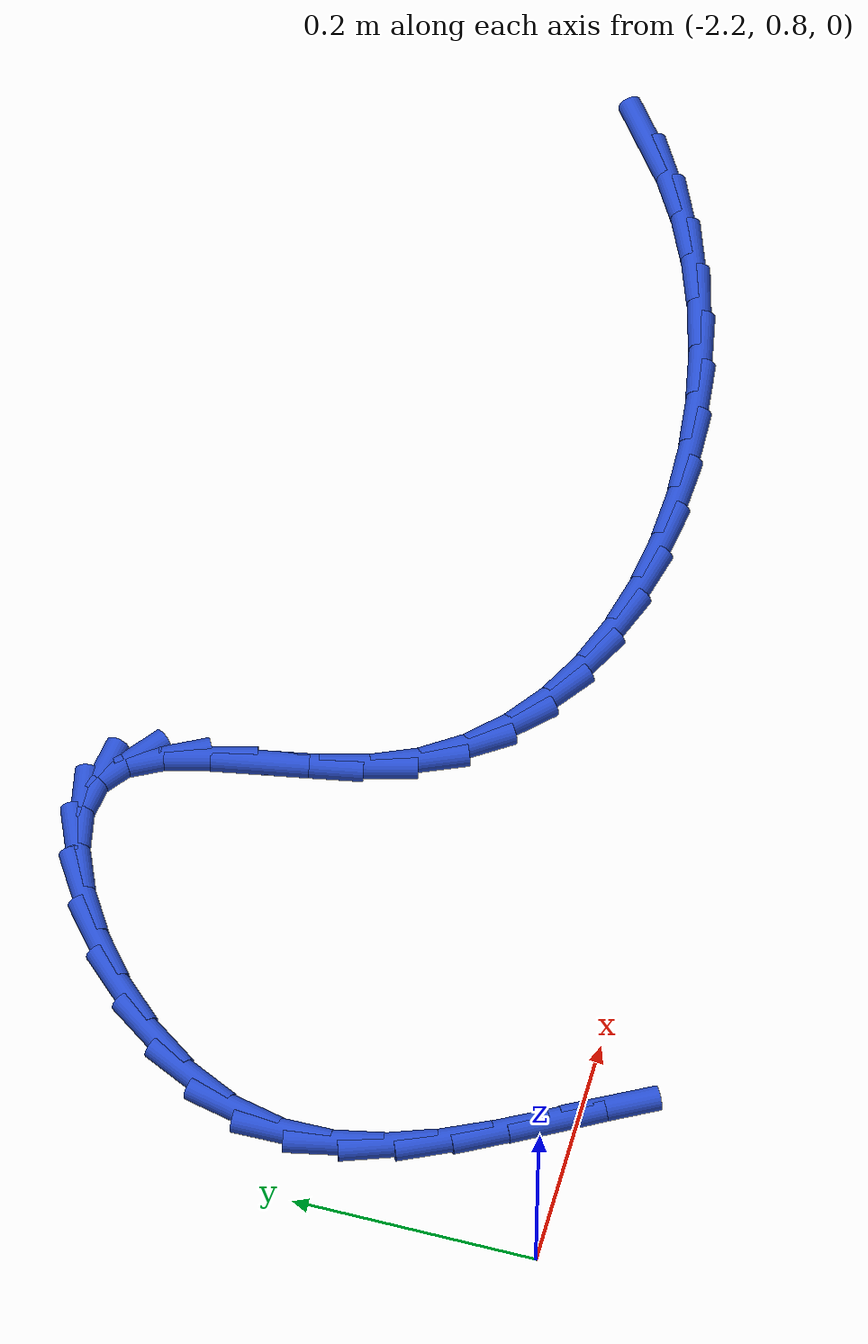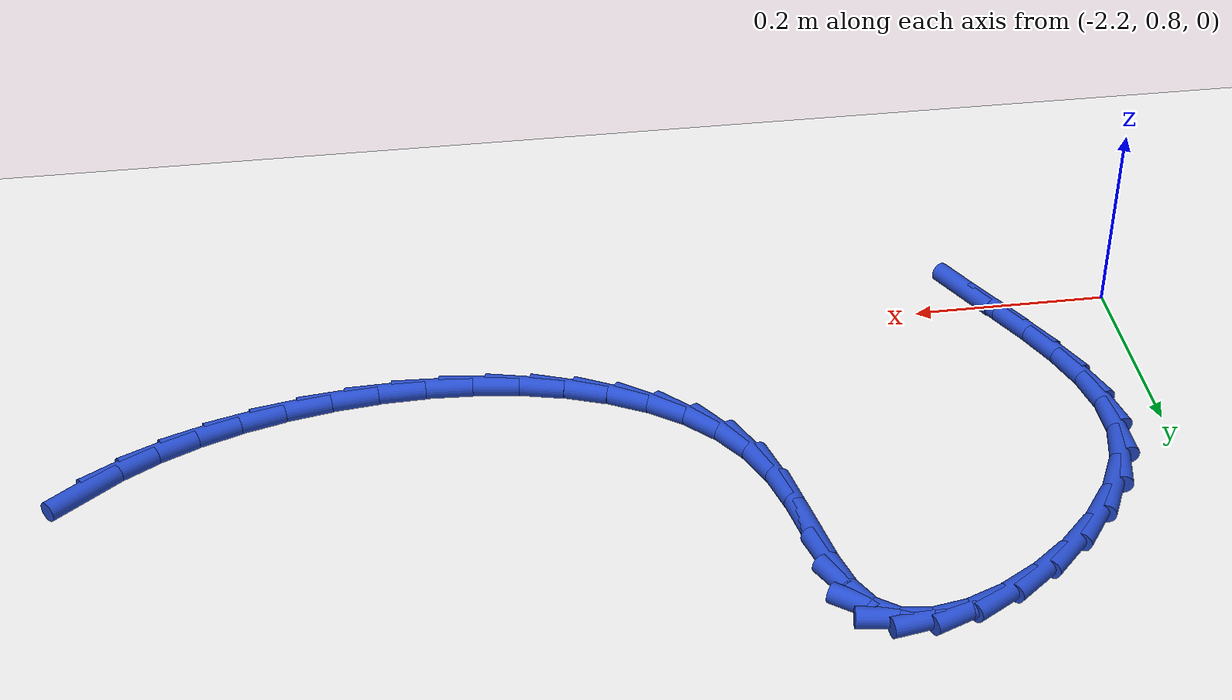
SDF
<sdf version="1.6">
 <world name="default">
  <model name="ground_plane">
   <static>1</static>
   <link name="link">
    <collision name="collision">
     <geometry><plane><normal>0 0 1</normal><size>100 100</size></plane></geometry>
     <surface><friction><ode><mu>100</mu><mu2>50</mu2></ode></friction></surface>
    </collision>
    <visual name="visual">
     <cast_shadows>0</cast_shadows>
     <geometry><plane><normal>0 0 1</normal><size>100 100</size></plane></geometry>
     <material>
      <script><uri>file://media/materials/scripts/gazebo.material</uri><name>Gazebo/WhiteGlow</name></script>
     </material>
    </visual>
   </link>
  </model>
  <model name="line">
   <link name="link_56">
    <pose>-1.1499961409888821 0.9808490637545612 0.01 0 1.57 0.6586563215360689</pose>
    <collision name="collision">
     <geometry><cylinder><radius>0.01</radius><length>0.08</length></cylinder></geometry>
    </collision>
    <visual name="visual">
     <material>
      <script><name>Gazebo/Blue</name><uri>file://media/materials/scripts/gazebo.material</uri></script>
     </material>
     <geometry><cylinder><radius>0.01</radius><length>0.08</length></cylinder></geometry>
    </visual>
   </link>
   <link name="link_57">
    <pose>-1.1829011087535364 0.9553821281779883 0.01 0 1.57 0.5456979792749265</pose>
    <collision name="collision">
     <geometry><cylinder><radius>0.01</radius><length>0.08</length></cylinder></geometry>
    </collision>
    <visual name="visual">
     <material>
      <script><name>Gazebo/Blue</name><uri>file://media/materials/scripts/gazebo.material</uri></script>
     </material>
     <geometry><cylinder><radius>0.01</radius><length>0.08</length></cylinder></geometry>
    </visual>
   </link>
   <link name="link_58">
    <pose>-1.2198823777023107 0.9329270422638208 0.01 0 1.57 0.44613907043595596</pose>
    <collision name="collision">
     <geometry><cylinder><radius>0.01</radius><length>0.08</length></cylinder></geometry>
    </collision>
    <visual name="visual">
     <material>
      <script><name>Gazebo/Blue</name><uri>file://media/materials/scripts/gazebo.material</uri></script>
     </material>
     <geometry><cylinder><radius>0.01</radius><length>0.08</length></cylinder></geometry>
    </visual>
   </link>
   <link name="link_59">
    <pose>-1.2602610481628223 0.9136138410345943 0.01 0 1.57 0.35632409400290016</pose>
    <collision name="collision">
     <geometry><cylinder><radius>0.01</radius><length>0.08</length></cylinder></geometry>
    </collision>
    <visual name="visual">
     <material>
      <script><name>Gazebo/Blue</name><uri>file://media/materials/scripts/gazebo.material</uri></script>
     </material>
     <geometry><cylinder><radius>0.01</radius><length>0.08</length></cylinder></geometry>
    </visual>
   </link>
   <link name="link_60">
    <pose>-1.3033582204626872 0.8975725595128453 0.01 0 1.57 0.27302986229351545</pose>
    <collision name="collision">
     <geometry><cylinder><radius>0.01</radius><length>0.08</length></cylinder></geometry>
    </collision>
    <visual name="visual">
     <material>
      <script><name>Gazebo/Blue</name><uri>file://media/materials/scripts/gazebo.material</uri></script>
     </material>
     <geometry><cylinder><radius>0.01</radius><length>0.08</length></cylinder></geometry>
    </visual>
   </link>
   <link name="link_61">
    <pose>-1.3484949949295237 0.8849332327211092 0.01 0 1.57 0.19341870682490253</pose>
    <collision name="collision">
     <geometry><cylinder><radius>0.01</radius><length>0.08</length></cylinder></geometry>
    </collision>
    <visual name="visual">
     <material>
      <script><name>Gazebo/Blue</name><uri>file://media/materials/scripts/gazebo.material</uri></script>
     </material>
     <geometry><cylinder><radius>0.01</radius><length>0.08</length></cylinder></geometry>
    </visual>
   </link>
   <link name="link_62">
    <pose>-1.394992471890947 0.8758258956819222 0.01 0 1.57 0.11490901057066237</pose>
    <collision name="collision">
     <geometry><cylinder><radius>0.01</radius><length>0.08</length></cylinder></geometry>
    </collision>
    <visual name="visual">
     <material>
      <script><name>Gazebo/Blue</name><uri>file://media/materials/scripts/gazebo.material</uri></script>
     </material>
     <geometry><cylinder><radius>0.01</radius><length>0.08</length></cylinder></geometry>
    </visual>
   </link>
   <link name="link_63">
    <pose>-1.442171751674576 0.87038058341782 0.01 0 1.57 0.03502543224834319</pose>
    <collision name="collision">
     <geometry><cylinder><radius>0.01</radius><length>0.08</length></cylinder></geometry>
    </collision>
    <visual name="visual">
     <material>
      <script><name>Gazebo/Blue</name><uri>file://media/materials/scripts/gazebo.material</uri></script>
     </material>
     <geometry><cylinder><radius>0.01</radius><length>0.08</length></cylinder></geometry>
    </visual>
   </link>
   <link name="link_64">
    <pose>-1.4893539346080258 0.8687273309513387 0.01 0 1.57 -0.04874716901255581</pose>
    <collision name="collision">
     <geometry><cylinder><radius>0.01</radius><length>0.08</length></cylinder></geometry>
    </collision>
    <visual name="visual">
     <material>
      <script><name>Gazebo/Blue</name><uri>file://media/materials/scripts/gazebo.material</uri></script>
     </material>
     <geometry><cylinder><radius>0.01</radius><length>0.08</length></cylinder></geometry>
    </visual>
   </link>
   <link name="link_65">
    <pose>-1.5358601210189131 0.8709961733050139 0.01 0 1.57 -0.13909141387673266</pose>
    <collision name="collision">
     <geometry><cylinder><radius>0.01</radius><length>0.08</length></cylinder></geometry>
    </collision>
    <visual name="visual">
     <material>
      <script><name>Gazebo/Blue</name><uri>file://media/materials/scripts/gazebo.material</uri></script>
     </material>
     <geometry><cylinder><radius>0.01</radius><length>0.08</length></cylinder></geometry>
    </visual>
   </link>
   <link name="link_66">
    <pose>-1.581011411234857 0.877317145501382 0.01 0 1.57 -0.23893989248989606</pose>
    <collision name="collision">
     <geometry><cylinder><radius>0.01</radius><length>0.08</length></cylinder></geometry>
    </collision>
    <visual name="visual">
     <material>
      <script><name>Gazebo/Blue</name><uri>file://media/materials/scripts/gazebo.material</uri></script>
     </material>
     <geometry><cylinder><radius>0.01</radius><length>0.08</length></cylinder></geometry>
    </visual>
   </link>
   <link name="link_67">
    <pose>-1.6241289055834724 0.8878202825629785 0.01 0 1.57 -0.3514501183548127</pose>
    <collision name="collision">
     <geometry><cylinder><radius>0.01</radius><length>0.08</length></cylinder></geometry>
    </collision>
    <visual name="visual">
     <material>
      <script><name>Gazebo/Blue</name><uri>file://media/materials/scripts/gazebo.material</uri></script>
     </material>
     <geometry><cylinder><radius>0.01</radius><length>0.08</length></cylinder></geometry>
    </visual>
   </link>
   <link name="link_68">
    <pose>-1.6645337043923774 0.9026356195123397 0.01 0 1.57 -0.47974694753183705</pose>
    <collision name="collision">
     <geometry><cylinder><radius>0.01</radius><length>0.08</length></cylinder></geometry>
    </collision>
    <visual name="visual">
     <material>
      <script><name>Gazebo/Blue</name><uri>file://media/materials/scripts/gazebo.material</uri></script>
     </material>
     <geometry><cylinder><radius>0.01</radius><length>0.08</length></cylinder></geometry>
    </visual>
   </link>
   <link name="link_69">
    <pose>-1.7015469079891876 0.9218931913720011 0.01 0 1.57 -0.6262404363219375</pose>
    <collision name="collision">
     <geometry><cylinder><radius>0.01</radius><length>0.08</length></cylinder></geometry>
    </collision>
    <visual name="visual">
     <material>
      <script><name>Gazebo/Blue</name><uri>file://media/materials/scripts/gazebo.material</uri></script>
     </material>
     <geometry><cylinder><radius>0.01</radius><length>0.08</length></cylinder></geometry>
    </visual>
   </link>
   <link name="link_70">
    <pose>-1.7344896167015211 0.9457230331644988 0.01 0 1.57 -0.7913712935816095</pose>
    <collision name="collision">
     <geometry><cylinder><radius>0.01</radius><length>0.08</length></cylinder></geometry>
    </collision>
    <visual name="visual">
     <material>
      <script><name>Gazebo/Blue</name><uri>file://media/materials/scripts/gazebo.material</uri></script>
     </material>
     <geometry><cylinder><radius>0.01</radius><length>0.08</length></cylinder></geometry>
    </visual>
   </link>
   <link name="link_71">
    <pose>-1.762682930856994 0.9742551799123687 0.01 0 1.57 -0.9720397861753626</pose>
    <collision name="collision">
     <geometry><cylinder><radius>0.01</radius><length>0.08</length></cylinder></geometry>
    </collision>
    <visual name="visual">
     <material>
      <script><name>Gazebo/Blue</name><uri>file://media/materials/scripts/gazebo.material</uri></script>
     </material>
     <geometry><cylinder><radius>0.01</radius><length>0.08</length></cylinder></geometry>
    </visual>
   </link>
   <link name="link_72">
    <pose>-1.7854479507832237 1.0076196666381472 0.01 0 1.57 -1.160239931327634</pose>
    <collision name="collision">
     <geometry><cylinder><radius>0.01</radius><length>0.08</length></cylinder></geometry>
    </collision>
    <visual name="visual">
     <material>
      <script><name>Gazebo/Blue</name><uri>file://media/materials/scripts/gazebo.material</uri></script>
     </material>
     <geometry><cylinder><radius>0.01</radius><length>0.08</length></cylinder></geometry>
    </visual>
   </link>
   <link name="link_73">
    <pose>-1.8021237760128328 1.0459291050560426 0.01 0 1.57 -1.313152241642247</pose>
    <collision name="collision">
     <geometry><cylinder><radius>0.01</radius><length>0.08</length></cylinder></geometry>
    </collision>
    <visual name="visual">
     <material>
      <script><name>Gazebo/Blue</name><uri>file://media/materials/scripts/gazebo.material</uri></script>
     </material>
     <geometry><cylinder><radius>0.01</radius><length>0.08</length></cylinder></geometry>
    </visual>
   </link>
   <link name="link_74">
    <pose>-1.8132458506718558 1.0881380401374294 0.01 0 1.57 -1.3870518415586446</pose>
    <collision name="collision">
     <geometry><cylinder><radius>0.01</radius><length>0.08</length></cylinder></geometry>
    </collision>
    <visual name="visual">
     <material>
      <script><name>Gazebo/Blue</name><uri>file://media/materials/scripts/gazebo.material</uri></script>
     </material>
     <geometry><cylinder><radius>0.01</radius><length>0.08</length></cylinder></geometry>
    </visual>
   </link>
   <link name="link_75">
    <pose>-1.82127416810431 1.1313380448834156 0.01 0 1.57 -1.388747293466564</pose>
    <collision name="collision">
     <geometry><cylinder><radius>0.01</radius><length>0.08</length></cylinder></geometry>
    </collision>
    <visual name="visual">
     <material>
      <script><name>Gazebo/Blue</name><uri>file://media/materials/scripts/gazebo.material</uri></script>
     </material>
     <geometry><cylinder><radius>0.01</radius><length>0.08</length></cylinder></geometry>
    </visual>
   </link>
   <link name="link_76">
    <pose>-1.8288427617894452 1.1724522206911596 0.01 0 1.57 -1.306151094775137</pose>
    <collision name="collision">
     <geometry><cylinder><radius>0.01</radius><length>0.08</length></cylinder></geometry>
    </collision>
    <visual name="visual">
     <material>
      <script><name>Gazebo/Blue</name><uri>file://media/materials/scripts/gazebo.material</uri></script>
     </material>
     <geometry><cylinder><radius>0.01</radius><length>0.08</length></cylinder></geometry>
    </visual>
   </link>
   <link name="link_77">
    <pose>-1.8385856652065102 1.2084036689578193 0.01 0 1.57 -1.0872774744307023</pose>
    <collision name="collision">
     <geometry><cylinder><radius>0.01</radius><length>0.08</length></cylinder></geometry>
    </collision>
    <visual name="visual">
     <material>
      <script><name>Gazebo/Blue</name><uri>file://media/materials/scripts/gazebo.material</uri></script>
     </material>
     <geometry><cylinder><radius>0.01</radius><length>0.08</length></cylinder></geometry>
    </visual>
   </link>
   <link name="link_78">
    <pose>-1.8531369118347554 1.2361154910805519 0.01 0 1.57 -0.6454386616561509</pose>
    <collision name="collision">
     <geometry><cylinder><radius>0.01</radius><length>0.08</length></cylinder></geometry>
    </collision>
    <visual name="visual">
     <material>
      <script><name>Gazebo/Blue</name><uri>file://media/materials/scripts/gazebo.material</uri></script>
     </material>
     <geometry><cylinder><radius>0.01</radius><length>0.08</length></cylinder></geometry>
    </visual>
   </link>
   <link name="link_79">
    <pose>-1.8750308689683424 1.2526023378159492 0.01 0 1.57 -0.1489024832219367</pose>
    <collision name="collision">
     <geometry><cylinder><radius>0.01</radius><length>0.08</length></cylinder></geometry>
    </collision>
    <visual name="visual">
     <material>
      <script><name>Gazebo/Blue</name><uri>file://media/materials/scripts/gazebo.material</uri></script>
     </material>
     <geometry><cylinder><radius>0.01</radius><length>0.08</length></cylinder></geometry>
    </visual>
   </link>
   <link name="link_80">
    <pose>-1.9044721229121937 1.257018903276329 0.01 0 1.57 0.17998443423507343</pose>
    <collision name="collision">
     <geometry><cylinder><radius>0.01</radius><length>0.08</length></cylinder></geometry>
    </collision>
    <visual name="visual">
     <material>
      <script><name>Gazebo/Blue</name><uri>file://media/materials/scripts/gazebo.material</uri></script>
     </material>
     <geometry><cylinder><radius>0.01</radius><length>0.08</length></cylinder></geometry>
    </visual>
   </link>
   <link name="link_81">
    <pose>-1.9393144765798844 1.2506792168937835 0.01 0 1.57 0.3915555624367051</pose>
    <collision name="collision">
     <geometry><cylinder><radius>0.01</radius><length>0.08</length></cylinder></geometry>
    </collision>
    <visual name="visual">
     <material>
      <script><name>Gazebo/Blue</name><uri>file://media/materials/scripts/gazebo.material</uri></script>
     </material>
     <geometry><cylinder><radius>0.01</radius><length>0.08</length></cylinder></geometry>
    </visual>
   </link>
   <link name="link_82">
    <pose>-1.977307866113426 1.2349927159500629 0.01 0 1.57 0.5458324565909884</pose>
    <collision name="collision">
     <geometry><cylinder><radius>0.01</radius><length>0.08</length></cylinder></geometry>
    </collision>
    <visual name="visual">
     <material>
      <script><name>Gazebo/Blue</name><uri>file://media/materials/scripts/gazebo.material</uri></script>
     </material>
     <geometry><cylinder><radius>0.01</radius><length>0.08</length></cylinder></geometry>
    </visual>
   </link>
   <link name="link_83">
    <pose>-2.0162022276548353 1.2113688377269194 0.01 0 1.57 0.6766155728892855</pose>
    <collision name="collision">
     <geometry><cylinder><radius>0.01</radius><length>0.08</length></cylinder></geometry>
    </collision>
    <visual name="visual">
     <material>
      <script><name>Gazebo/Blue</name><uri>file://media/materials/scripts/gazebo.material</uri></script>
     </material>
     <geometry><cylinder><radius>0.01</radius><length>0.08</length></cylinder></geometry>
    </visual>
   </link>
   <link name="link_84">
    <pose>-2.0537474973461216 1.181217019506104 0.01 0 1.57 0.804527224765265</pose>
    <collision name="collision">
     <geometry><cylinder><radius>0.01</radius><length>0.08</length></cylinder></geometry>
    </collision>
    <visual name="visual">
     <material>
      <script><name>Gazebo/Blue</name><uri>file://media/materials/scripts/gazebo.material</uri></script>
     </material>
     <geometry><cylinder><radius>0.01</radius><length>0.08</length></cylinder></geometry>
    </visual>
   </link>
   <link name="link_85">
    <pose>-2.0876936113293008 1.1459466985693674 0.01 0 1.57 0.9462372717508026</pose>
    <collision name="collision">
     <geometry><cylinder><radius>0.01</radius><length>0.08</length></cylinder></geometry>
    </collision>
    <visual name="visual">
     <material>
      <script><name>Gazebo/Blue</name><uri>file://media/materials/scripts/gazebo.material</uri></script>
     </material>
     <geometry><cylinder><radius>0.01</radius><length>0.08</length></cylinder></geometry>
    </visual>
   </link>
   <link name="link_86">
    <pose>-2.1157905057463857 1.1069673121984616 0.01 0 1.57 1.119666074090778</pose>
    <collision name="collision">
     <geometry><cylinder><radius>0.01</radius><length>0.08</length></cylinder></geometry>
    </collision>
    <visual name="visual">
     <material>
      <script><name>Gazebo/Blue</name><uri>file://media/materials/scripts/gazebo.material</uri></script>
     </material>
     <geometry><cylinder><radius>0.01</radius><length>0.08</length></cylinder></geometry>
    </visual>
   </link>
   <link name="link_87">
    <pose>-2.135788116739389 1.0656882976751374 0.01 0 1.57 1.3438183965602193</pose>
    <collision name="collision">
     <geometry><cylinder><radius>0.01</radius><length>0.08</length></cylinder></geometry>
    </collision>
    <visual name="visual">
     <material>
      <script><name>Gazebo/Blue</name><uri>file://media/materials/scripts/gazebo.material</uri></script>
     </material>
     <geometry><cylinder><radius>0.01</radius><length>0.08</length></cylinder></geometry>
    </visual>
   </link>
   <link name="link_88">
    <pose>-2.1455334714453587 1.0234929170790426 0.01 0 1.57 -1.5573171466898221</pose>
    <collision name="collision">
     <geometry><cylinder><radius>0.01</radius><length>0.08</length></cylinder></geometry>
    </collision>
    <visual name="visual">
     <material>
      <script><name>Gazebo/Blue</name><uri>file://media/materials/scripts/gazebo.material</uri></script>
     </material>
     <geometry><cylinder><radius>0.01</radius><length>0.08</length></cylinder></geometry>
    </visual>
   </link>
   <link name="link_89">
    <pose>-2.144963377079426 0.9812010391918702 0.01 0 1.57 -1.361707097125111</pose>
    <collision name="collision">
     <geometry><cylinder><radius>0.01</radius><length>0.08</length></cylinder></geometry>
    </collision>
    <visual name="visual">
     <material>
      <script><name>Gazebo/Blue</name><uri>file://media/materials/scripts/gazebo.material</uri></script>
     </material>
     <geometry><cylinder><radius>0.01</radius><length>0.08</length></cylinder></geometry>
    </visual>
   </link>
   <link name="link_90">
    <pose>-2.1360277735934106 0.939089803202066 0.01 0 1.57 -1.2195968500944359</pose>
    <collision name="collision">
     <geometry><cylinder><radius>0.01</radius><length>0.08</length></cylinder></geometry>
    </collision>
    <visual name="visual">
     <material>
      <script><name>Gazebo/Blue</name><uri>file://media/materials/scripts/gazebo.material</uri></script>
     </material>
     <geometry><cylinder><radius>0.01</radius><length>0.08</length></cylinder></geometry>
    </visual>
   </link>
   <link name="link_91">
    <pose>-2.1207583557557816 0.8974143076459268 0.01 0 1.57 -1.1252830928558124</pose>
    <collision name="collision">
     <geometry><cylinder><radius>0.01</radius><length>0.08</length></cylinder></geometry>
    </collision>
    <visual name="visual">
     <material>
      <script><name>Gazebo/Blue</name><uri>file://media/materials/scripts/gazebo.material</uri></script>
     </material>
     <geometry><cylinder><radius>0.01</radius><length>0.08</length></cylinder></geometry>
    </visual>
   </link>
   <link name="link_92">
    <pose>-2.101186818335008 0.8564296510597468 0.01 0 1.57 -1.0713983868236119</pose>
    <collision name="collision">
     <geometry><cylinder><radius>0.01</radius><length>0.08</length></cylinder></geometry>
    </collision>
    <visual name="visual">
     <material>
      <script><name>Gazebo/Blue</name><uri>file://media/materials/scripts/gazebo.material</uri></script>
     </material>
     <geometry><cylinder><radius>0.01</radius><length>0.08</length></cylinder></geometry>
    </visual>
   </link>
   <link name="link_93">
    <pose>-2.0793448560995587 0.8163909319798225 0.01 0 1.57 -1.0538320956029923</pose>
    <collision name="collision">
     <geometry><cylinder><radius>0.01</radius><length>0.08</length></cylinder></geometry>
    </collision>
    <visual name="visual">
     <material>
      <script><name>Gazebo/Blue</name><uri>file://media/materials/scripts/gazebo.material</uri></script>
     </material>
     <geometry><cylinder><radius>0.01</radius><length>0.08</length></cylinder></geometry>
    </visual>
   </link>
   <link name="link_94">
    <pose>-2.057264163817901 0.777553248942448 0.01 0 1.57 -1.0735592627752162</pose>
    <collision name="collision">
     <geometry><cylinder><radius>0.01</radius><length>0.08</length></cylinder></geometry>
    </collision>
    <visual name="visual">
     <material>
      <script><name>Gazebo/Blue</name><uri>file://media/materials/scripts/gazebo.material</uri></script>
     </material>
     <geometry><cylinder><radius>0.01</radius><length>0.08</length></cylinder></geometry>
    </visual>
   </link>
  </model>
 </world>
</sdf>
